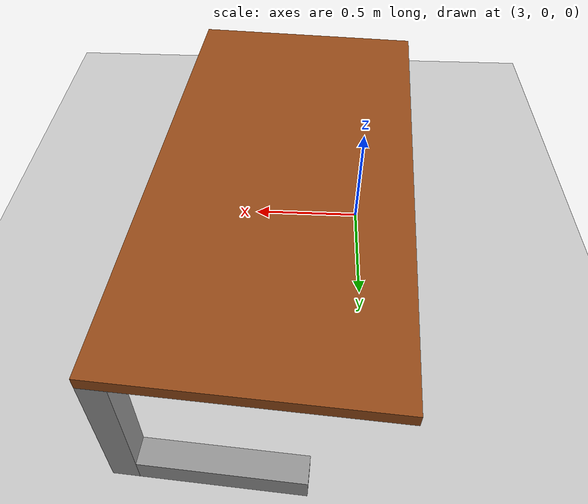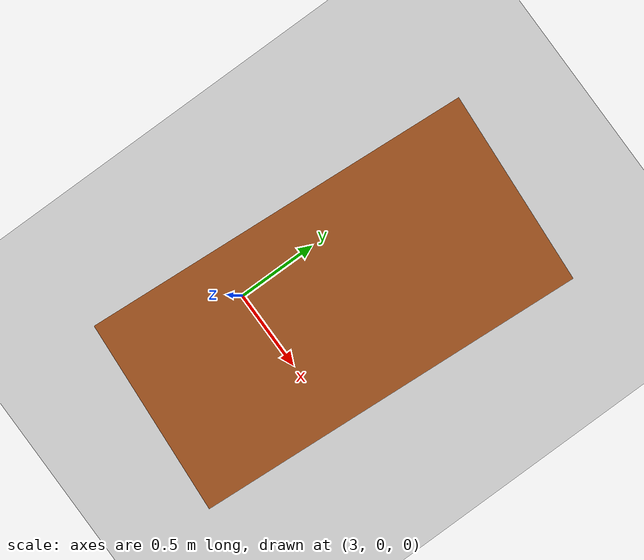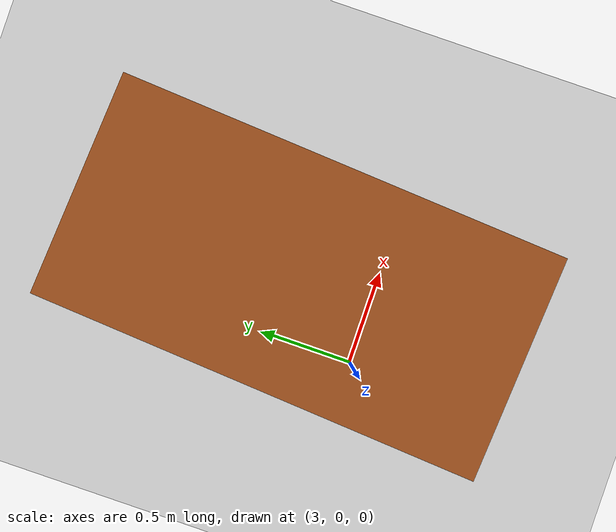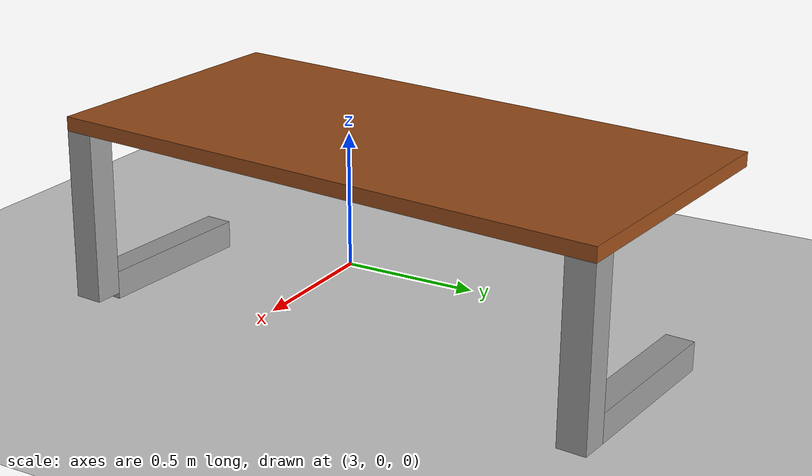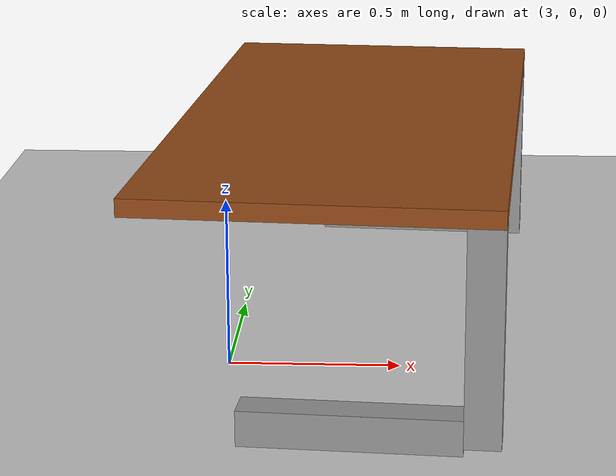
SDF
<sdf version="1.6">
 <world name="default">
  <model name="ground_plane">
   <static>1</static>
   <link name="link">
    <collision name="collision">
     <geometry><plane><normal>0 0 1</normal><size>100 100</size></plane></geometry>
     <surface><friction><ode><mu>100</mu><mu2>50</mu2></ode></friction></surface>
    </collision>
    <visual name="visual">
     <cast_shadows>0</cast_shadows>
     <geometry><plane><normal>0 0 1</normal><size>100 100</size></plane></geometry>
     <material>
      <script><uri>file://media/materials/scripts/gazebo.material</uri><name>Gazebo/Grey</name></script>
     </material>
    </visual>
   </link>
  </model>
  <model name="TaableInstructor">
   <link name="link_0">
    <pose>0 -0.22 0.364 0 -0 0</pose>
    <inertial>
     <mass>10</mass>
     <inertia>
      <ixx>0.166667</ixx>
      <ixy>0</ixy>
      <ixz>0</ixz>
      <iyy>0.166667</iyy>
      <iyz>0</iyz>
      <izz>0.166667</izz>
     </inertia>
    </inertial>
    <visual name="visual">
     <geometry><box><size>2 1 0.05</size></box></geometry>
     <material>
      <lighting>1</lighting>
      <script><uri>file://media/materials/scripts/gazebo.material</uri><name>Gazebo/Grey</name></script>
      <shader type="pixel"><normal_map>__default__</normal_map></shader>
      <ambient>0.6 0.3 0.1 1</ambient>
      <diffuse>0.7 0.7 0.7 1</diffuse>
      <specular>0.01 0.01 0.01 1</specular>
      <emissive>0 0 0 1</emissive>
     </material>
    </visual>
    <collision name="collision">
     <geometry><box><size>2 1 0.05</size></box></geometry>
     <surface>
      <friction>
       <ode><mu>1</mu><mu2>1</mu2><fdir1>0 0 0</fdir1><slip1>0</slip1><slip2>0</slip2></ode>
       <torsional>
        <coefficient>1</coefficient>
        <patch_radius>0</patch_radius>
        <surface_radius>0</surface_radius>
        <use_patch_radius>1</use_patch_radius>
        <ode><slip>0</slip></ode>
       </torsional>
      </friction>
      <bounce><restitution_coefficient>0</restitution_coefficient><threshold>1e+06</threshold></bounce>
      <contact>
       <collide_without_contact>0</collide_without_contact>
       <collide_without_contact_bitmask>1</collide_without_contact_bitmask>
       <collide_bitmask>1</collide_bitmask>
       <ode>
        <soft_cfm>0</soft_cfm>
        <soft_erp>0.2</soft_erp>
        <kp>1e+13</kp>
        <kd>1</kd>
        <max_vel>0.01</max_vel>
        <min_depth>0</min_depth>
       </ode>
       <bullet>
        <split_impulse>1</split_impulse>
        <split_impulse_penetration_threshold>-0.01</split_impulse_penetration_threshold>
        <soft_cfm>0</soft_cfm>
        <soft_erp>0.2</soft_erp>
        <kp>1e+13</kp>
        <kd>1</kd>
       </bullet>
      </contact>
     </surface>
    </collision>
   </link>
   <link name="link_1">
    <pose>-0.95 0.23 0.039 0 -0 0</pose>
    <inertial>
     <mass>1</mass>
     <inertia>
      <ixx>0.166667</ixx>
      <ixy>0</ixy>
      <ixz>0</ixz>
      <iyy>0.166667</iyy>
      <iyz>0</iyz>
      <izz>0.166667</izz>
     </inertia>
    </inertial>
    <visual name="visual">
     <geometry><box><size>0.1 0.1 0.6</size></box></geometry>
     <material>
      <lighting>1</lighting>
      <script><uri>file://media/materials/scripts/gazebo.material</uri><name>Gazebo/Grey</name></script>
      <shader type="pixel"><normal_map>__default__</normal_map></shader>
      <ambient>0.3 0.3 0.3 1</ambient>
      <diffuse>0.7 0.7 0.7 1</diffuse>
      <specular>0.01 0.01 0.01 1</specular>
      <emissive>0 0 0 1</emissive>
     </material>
    </visual>
    <collision name="collision">
     <geometry><box><size>0.1 0.1 0.6</size></box></geometry>
     <surface>
      <friction>
       <ode><mu>1</mu><mu2>1</mu2><fdir1>0 0 0</fdir1><slip1>0</slip1><slip2>0</slip2></ode>
       <torsional>
        <coefficient>1</coefficient>
        <patch_radius>0</patch_radius>
        <surface_radius>0</surface_radius>
        <use_patch_radius>1</use_patch_radius>
        <ode><slip>0</slip></ode>
       </torsional>
      </friction>
      <bounce><restitution_coefficient>0</restitution_coefficient><threshold>1e+06</threshold></bounce>
      <contact>
       <collide_without_contact>0</collide_without_contact>
       <collide_without_contact_bitmask>1</collide_without_contact_bitmask>
       <collide_bitmask>1</collide_bitmask>
       <ode>
        <soft_cfm>0</soft_cfm>
        <soft_erp>0.2</soft_erp>
        <kp>1e+13</kp>
        <kd>1</kd>
        <max_vel>0.01</max_vel>
        <min_depth>0</min_depth>
       </ode>
       <bullet>
        <split_impulse>1</split_impulse>
        <split_impulse_penetration_threshold>-0.01</split_impulse_penetration_threshold>
        <soft_cfm>0</soft_cfm>
        <soft_erp>0.2</soft_erp>
        <kp>1e+13</kp>
        <kd>1</kd>
       </bullet>
      </contact>
     </surface>
    </collision>
   </link>
   <link name="link_1_clone">
    <pose>0.95 0.23 0.039 0 -0 0</pose>
    <inertial>
     <mass>1</mass>
     <inertia>
      <ixx>0.166667</ixx>
      <ixy>0</ixy>
      <ixz>0</ixz>
      <iyy>0.166667</iyy>
      <iyz>0</iyz>
      <izz>0.166667</izz>
     </inertia>
    </inertial>
    <visual name="visual">
     <geometry><box><size>0.1 0.1 0.6</size></box></geometry>
     <material>
      <lighting>1</lighting>
      <script><uri>file://media/materials/scripts/gazebo.material</uri><name>Gazebo/Grey</name></script>
      <shader type="pixel"><normal_map>__default__</normal_map></shader>
      <ambient>0.3 0.3 0.3 1</ambient>
      <diffuse>0.7 0.7 0.7 1</diffuse>
      <specular>0.01 0.01 0.01 1</specular>
      <emissive>0 0 0 1</emissive>
     </material>
    </visual>
    <collision name="collision">
     <geometry><box><size>0.1 0.1 0.6</size></box></geometry>
     <surface>
      <friction>
       <ode><mu>1</mu><mu2>1</mu2><fdir1>0 0 0</fdir1><slip1>0</slip1><slip2>0</slip2></ode>
       <torsional>
        <coefficient>1</coefficient>
        <patch_radius>0</patch_radius>
        <surface_radius>0</surface_radius>
        <use_patch_radius>1</use_patch_radius>
        <ode><slip>0</slip></ode>
       </torsional>
      </friction>
      <bounce><restitution_coefficient>0</restitution_coefficient><threshold>1e+06</threshold></bounce>
      <contact>
       <collide_without_contact>0</collide_without_contact>
       <collide_without_contact_bitmask>1</collide_without_contact_bitmask>
       <collide_bitmask>1</collide_bitmask>
       <ode>
        <soft_cfm>0</soft_cfm>
        <soft_erp>0.2</soft_erp>
        <kp>1e+13</kp>
        <kd>1</kd>
        <max_vel>0.01</max_vel>
        <min_depth>0</min_depth>
       </ode>
       <bullet>
        <split_impulse>1</split_impulse>
        <split_impulse_penetration_threshold>-0.01</split_impulse_penetration_threshold>
        <soft_cfm>0</soft_cfm>
        <soft_erp>0.2</soft_erp>
        <kp>1e+13</kp>
        <kd>1</kd>
       </bullet>
      </contact>
     </surface>
    </collision>
   </link>
   <link name="link_1_clone_0">
    <pose>-0.95 -0.12 -0.211 1.57 -0 0</pose>
    <inertial>
     <mass>1</mass>
     <inertia>
      <ixx>0.166667</ixx>
      <ixy>0</ixy>
      <ixz>0</ixz>
      <iyy>0.166667</iyy>
      <iyz>0</iyz>
      <izz>0.166667</izz>
     </inertia>
    </inertial>
    <visual name="visual">
     <geometry><box><size>0.1 0.1 0.6</size></box></geometry>
     <material>
      <lighting>1</lighting>
      <script><uri>file://media/materials/scripts/gazebo.material</uri><name>Gazebo/Grey</name></script>
      <shader type="pixel"><normal_map>__default__</normal_map></shader>
      <ambient>0.3 0.3 0.3 1</ambient>
      <diffuse>0.7 0.7 0.7 1</diffuse>
      <specular>0.01 0.01 0.01 1</specular>
      <emissive>0 0 0 1</emissive>
     </material>
    </visual>
    <collision name="collision">
     <geometry><box><size>0.1 0.1 0.6</size></box></geometry>
     <surface>
      <friction>
       <ode><mu>1</mu><mu2>1</mu2><fdir1>0 0 0</fdir1><slip1>0</slip1><slip2>0</slip2></ode>
       <torsional>
        <coefficient>1</coefficient>
        <patch_radius>0</patch_radius>
        <surface_radius>0</surface_radius>
        <use_patch_radius>1</use_patch_radius>
        <ode><slip>0</slip></ode>
       </torsional>
      </friction>
      <bounce><restitution_coefficient>0</restitution_coefficient><threshold>1e+06</threshold></bounce>
      <contact>
       <collide_without_contact>0</collide_without_contact>
       <collide_without_contact_bitmask>1</collide_without_contact_bitmask>
       <collide_bitmask>1</collide_bitmask>
       <ode>
        <soft_cfm>0</soft_cfm>
        <soft_erp>0.2</soft_erp>
        <kp>1e+13</kp>
        <kd>1</kd>
        <max_vel>0.01</max_vel>
        <min_depth>0</min_depth>
       </ode>
       <bullet>
        <split_impulse>1</split_impulse>
        <split_impulse_penetration_threshold>-0.01</split_impulse_penetration_threshold>
        <soft_cfm>0</soft_cfm>
        <soft_erp>0.2</soft_erp>
        <kp>1e+13</kp>
        <kd>1</kd>
       </bullet>
      </contact>
     </surface>
    </collision>
   </link>
   <link name="link_1_clone_0_clone">
    <pose>0.95 -0.12 -0.231 1.57 -0 0</pose>
    <inertial>
     <mass>1</mass>
     <inertia>
      <ixx>0.166667</ixx>
      <ixy>0</ixy>
      <ixz>0</ixz>
      <iyy>0.166667</iyy>
      <iyz>0</iyz>
      <izz>0.166667</izz>
     </inertia>
    </inertial>
    <visual name="visual">
     <geometry><box><size>0.1 0.1 0.6</size></box></geometry>
     <material>
      <lighting>1</lighting>
      <script><uri>file://media/materials/scripts/gazebo.material</uri><name>Gazebo/Grey</name></script>
      <shader type="pixel"><normal_map>__default__</normal_map></shader>
      <ambient>0.3 0.3 0.3 1</ambient>
      <diffuse>0.7 0.7 0.7 1</diffuse>
      <specular>0.01 0.01 0.01 1</specular>
      <emissive>0 0 0 1</emissive>
     </material>
    </visual>
    <collision name="collision">
     <geometry><box><size>0.1 0.1 0.6</size></box></geometry>
     <surface>
      <friction>
       <ode><mu>1</mu><mu2>1</mu2><fdir1>0 0 0</fdir1><slip1>0</slip1><slip2>0</slip2></ode>
       <torsional>
        <coefficient>1</coefficient>
        <patch_radius>0</patch_radius>
        <surface_radius>0</surface_radius>
        <use_patch_radius>1</use_patch_radius>
        <ode><slip>0</slip></ode>
       </torsional>
      </friction>
      <bounce><restitution_coefficient>0</restitution_coefficient><threshold>1e+06</threshold></bounce>
      <contact>
       <collide_without_contact>0</collide_without_contact>
       <collide_without_contact_bitmask>1</collide_without_contact_bitmask>
       <collide_bitmask>1</collide_bitmask>
       <ode>
        <soft_cfm>0</soft_cfm>
        <soft_erp>0.2</soft_erp>
        <kp>1e+13</kp>
        <kd>1</kd>
        <max_vel>0.01</max_vel>
        <min_depth>0</min_depth>
       </ode>
       <bullet>
        <split_impulse>1</split_impulse>
        <split_impulse_penetration_threshold>-0.01</split_impulse_penetration_threshold>
        <soft_cfm>0</soft_cfm>
        <soft_erp>0.2</soft_erp>
        <kp>1e+13</kp>
        <kd>1</kd>
       </bullet>
      </contact>
     </surface>
    </collision>
   </link>
   <joint name="link_0_JOINT_0" type="fixed">
    <parent>link_0</parent>
    <child>link_1_clone</child>
    <physics>
     <ode><limit><cfm>0</cfm><erp>0.2</erp></limit><suspension><cfm>0</cfm><erp>0.2</erp></suspension></ode>
    </physics>
   </joint>
   <joint name="link_0_JOINT_1" type="fixed">
    <parent>link_0</parent>
    <child>link_1</child>
    <physics>
     <ode><limit><cfm>0</cfm><erp>0.2</erp></limit><suspension><cfm>0</cfm><erp>0.2</erp></suspension></ode>
    </physics>
   </joint>
   <joint name="link_1_JOINT_2" type="fixed">
    <parent>link_1</parent>
    <child>link_1_clone_0</child>
    <physics>
     <ode><limit><cfm>0</cfm><erp>0.2</erp></limit><suspension><cfm>0</cfm><erp>0.2</erp></suspension></ode>
    </physics>
   </joint>
   <joint name="link_1_clone_JOINT_4" type="fixed">
    <parent>link_1_clone</parent>
    <child>link_1_clone_0_clone</child>
    <physics>
     <ode><limit><cfm>0</cfm><erp>0.2</erp></limit><suspension><cfm>0</cfm><erp>0.2</erp></suspension></ode>
    </physics>
   </joint>
   <static>0</static>
   <pose>3.56448 0.389819 0.271601 0.0008 -0.010533 -1.64038</pose>
  </model>
 </world>
</sdf>
